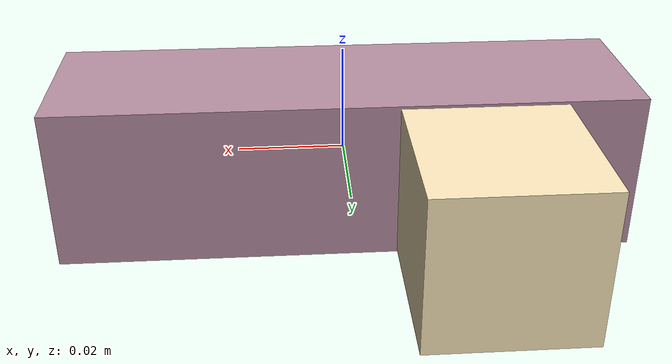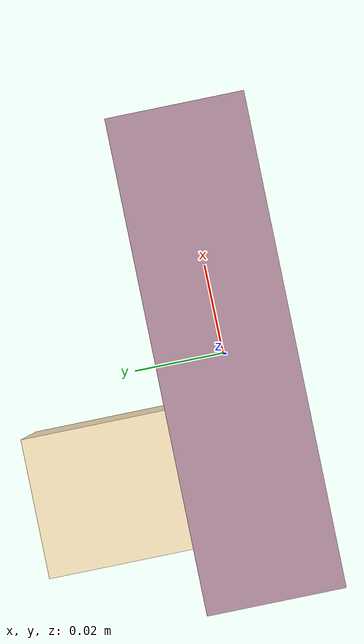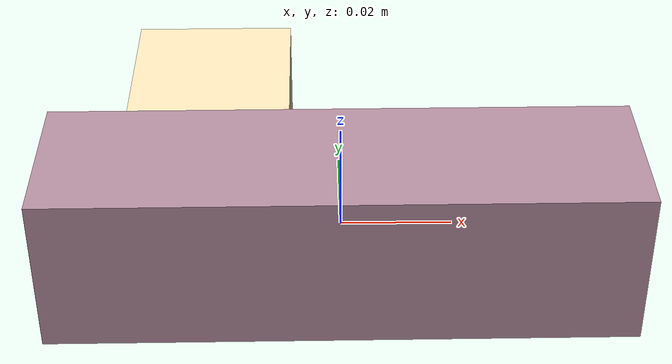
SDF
<sdf version="1.4"><world name="default"><model name="object0"><link name="link1"><pose>0 0 0 0 0 0</pose><inertial><pose>0 0 0 0 0 0</pose><mass>0.057880341819609195</mass><inertia><ixx>8.682051272941379e-06</ixx><ixy>0</ixy><iyy>5.9755663061071726e-05</iyy><ixz>0</ixz><iyz>0</iyz><izz>5.9755663061071726e-05</izz></inertia></inertial><visual name="link1_visual"><pose>0 0  0 0 0 0</pose><geometry><box><size>0.10718581818446148 0.03 0.03</size></box></geometry><material><diffuse>0.701522708016262 0.5529094721870109 0.6204246494355773 1</diffuse></material></visual><collision><pose>0 0  0 0 0 0</pose><geometry><box><size>0.10718581818446148 0.03 0.03</size></box></geometry></collision></link><link name="link2"><pose>-0.02420290552961534 0.0196221006163581 0 0 0 0</pose><inertial><pose>0 0 0 0 0 0</pose><mass>0.028573503266948835</mass><inertia><ixx>8.669392042199534e-06</ixx><ixy>0</ixy><iyy>4.145539098979826e-06</iyy><ixz>0</ixz><iyz>0</iyz><izz>8.809878433262033e-06</izz></inertia></inertial><visual name="link2_visual"><pose>0 0  0 0 0 0</pose><geometry><box><size>0.03 0.052913894938794136 0.028999999999999998</size></box></geometry><material><diffuse>0.9852013065463445 0.9062201465398143 0.7333212486708813 1</diffuse></material></visual><collision><pose>0 0  0 0 0 0</pose><geometry><box><size>0.03 0.052913894938794136 0.028999999999999998</size></box></geometry></collision></link><joint name="link_joint_0" type="fixed"><parent>link1</parent><child>link2</child><pose>0 0 0 0 0 0</pose><axis><xyz>0 0 1</xyz></axis></joint></model></world></sdf>
